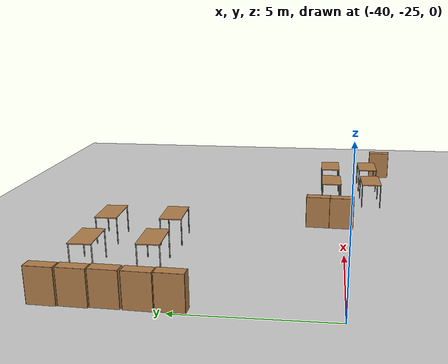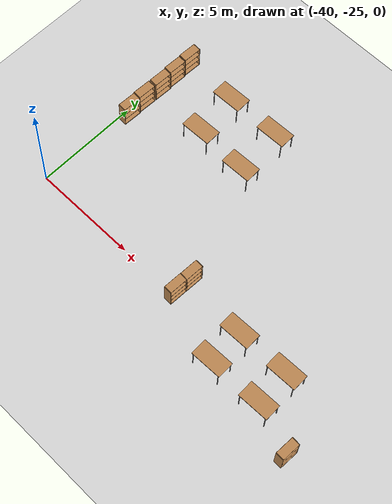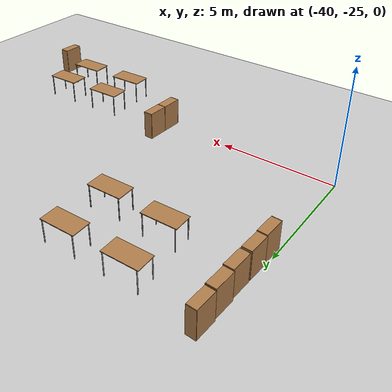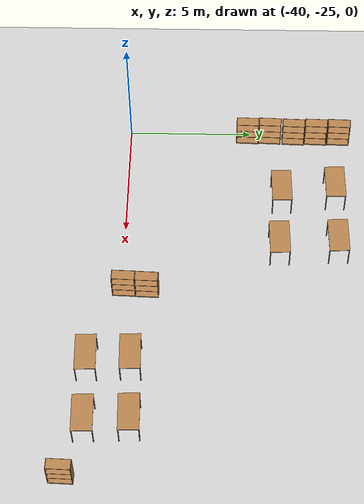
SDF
<sdf version="1.6">
 <world name="default">
  <model name="ground_plane">
   <static>1</static>
   <link name="link">
    <collision name="collision">
     <geometry><plane><normal>0 0 1</normal><size>100 100</size></plane></geometry>
     <surface><friction><ode><mu>100</mu><mu2>50</mu2></ode></friction></surface>
    </collision>
    <visual name="visual">
     <cast_shadows>0</cast_shadows>
     <geometry><plane><normal>0 0 1</normal><size>100 100</size></plane></geometry>
     <material>
      <script><uri>file://media/materials/scripts/gazebo.material</uri><name>Gazebo/Grey</name></script>
     </material>
    </visual>
   </link>
  </model>
  <model name="bookshelf_clone_1">
   <static>1</static>
   <link name="link">
    <inertial><mass>1</mass></inertial>
    <collision name="back">
     <pose>0 0.005 0.6 0 -0 0</pose>
     <geometry><box><size>0.9 0.01 1.2</size></box></geometry>
    </collision>
    <visual name="visual1">
     <pose>0 0.005 0.6 0 -0 0</pose>
     <geometry><box><size>0.9 0.01 1.2</size></box></geometry>
     <material>
      <script><uri>file://media/materials/scripts/gazebo.material</uri><name>Gazebo/Wood</name></script>
     </material>
    </visual>
    <collision name="left_side">
     <pose>0.45 -0.195 0.6 0 -0 0</pose>
     <geometry><box><size>0.02 0.4 1.2</size></box></geometry>
    </collision>
    <visual name="visual2">
     <pose>0.45 -0.195 0.6 0 -0 0</pose>
     <geometry><box><size>0.02 0.4 1.2</size></box></geometry>
     <material>
      <script><uri>file://media/materials/scripts/gazebo.material</uri><name>Gazebo/Wood</name></script>
     </material>
    </visual>
    <collision name="right_side">
     <pose>-0.45 -0.195 0.6 0 -0 0</pose>
     <geometry><box><size>0.02 0.4 1.2</size></box></geometry>
    </collision>
    <visual name="visual3">
     <pose>-0.45 -0.195 0.6 0 -0 0</pose>
     <geometry><box><size>0.02 0.4 1.2</size></box></geometry>
     <material>
      <script><uri>file://media/materials/scripts/gazebo.material</uri><name>Gazebo/Wood</name></script>
     </material>
    </visual>
    <collision name="bottom">
     <pose>0 -0.195 0.03 0 -0 0</pose>
     <geometry><box><size>0.88 0.4 0.06</size></box></geometry>
    </collision>
    <visual name="visual4">
     <pose>0 -0.195 0.03 0 -0 0</pose>
     <geometry><box><size>0.88 0.4 0.06</size></box></geometry>
     <material>
      <script><uri>file://media/materials/scripts/gazebo.material</uri><name>Gazebo/Wood</name></script>
     </material>
    </visual>
    <collision name="top">
     <pose>0 -0.195 1.19 0 -0 0</pose>
     <geometry><box><size>0.88 0.4 0.02</size></box></geometry>
    </collision>
    <visual name="visual5">
     <pose>0 -0.195 1.19 0 -0 0</pose>
     <geometry><box><size>0.88 0.4 0.02</size></box></geometry>
     <material>
      <script><uri>file://media/materials/scripts/gazebo.material</uri><name>Gazebo/Wood</name></script>
     </material>
    </visual>
    <collision name="low_shelf">
     <pose>0 -0.195 0.43 0 -0 0</pose>
     <geometry><box><size>0.88 0.4 0.02</size></box></geometry>
    </collision>
    <visual name="visual6">
     <pose>0 -0.195 0.43 0 -0 0</pose>
     <geometry><box><size>0.88 0.4 0.02</size></box></geometry>
     <material>
      <script><uri>file://media/materials/scripts/gazebo.material</uri><name>Gazebo/Wood</name></script>
     </material>
    </visual>
    <collision name="high_shelf">
     <pose>0 -0.195 0.8 0 -0 0</pose>
     <geometry><box><size>0.88 0.4 0.02</size></box></geometry>
    </collision>
    <visual name="visual7">
     <pose>0 -0.195 0.8 0 -0 0</pose>
     <geometry><box><size>0.88 0.4 0.02</size></box></geometry>
     <material>
      <script><uri>file://media/materials/scripts/gazebo.material</uri><name>Gazebo/Wood</name></script>
     </material>
    </visual>
   </link>
   <pose>-39.8789 -16.3153 0 0 -0 1.53332</pose>
  </model>
  <model name="bookshelf_clone_2">
   <static>1</static>
   <link name="link">
    <inertial><mass>1</mass></inertial>
    <collision name="back">
     <pose>0 0.005 0.6 0 -0 0</pose>
     <geometry><box><size>0.9 0.01 1.2</size></box></geometry>
    </collision>
    <visual name="visual1">
     <pose>0 0.005 0.6 0 -0 0</pose>
     <geometry><box><size>0.9 0.01 1.2</size></box></geometry>
     <material>
      <script><uri>file://media/materials/scripts/gazebo.material</uri><name>Gazebo/Wood</name></script>
     </material>
    </visual>
    <collision name="left_side">
     <pose>0.45 -0.195 0.6 0 -0 0</pose>
     <geometry><box><size>0.02 0.4 1.2</size></box></geometry>
    </collision>
    <visual name="visual2">
     <pose>0.45 -0.195 0.6 0 -0 0</pose>
     <geometry><box><size>0.02 0.4 1.2</size></box></geometry>
     <material>
      <script><uri>file://media/materials/scripts/gazebo.material</uri><name>Gazebo/Wood</name></script>
     </material>
    </visual>
    <collision name="right_side">
     <pose>-0.45 -0.195 0.6 0 -0 0</pose>
     <geometry><box><size>0.02 0.4 1.2</size></box></geometry>
    </collision>
    <visual name="visual3">
     <pose>-0.45 -0.195 0.6 0 -0 0</pose>
     <geometry><box><size>0.02 0.4 1.2</size></box></geometry>
     <material>
      <script><uri>file://media/materials/scripts/gazebo.material</uri><name>Gazebo/Wood</name></script>
     </material>
    </visual>
    <collision name="bottom">
     <pose>0 -0.195 0.03 0 -0 0</pose>
     <geometry><box><size>0.88 0.4 0.06</size></box></geometry>
    </collision>
    <visual name="visual4">
     <pose>0 -0.195 0.03 0 -0 0</pose>
     <geometry><box><size>0.88 0.4 0.06</size></box></geometry>
     <material>
      <script><uri>file://media/materials/scripts/gazebo.material</uri><name>Gazebo/Wood</name></script>
     </material>
    </visual>
    <collision name="top">
     <pose>0 -0.195 1.19 0 -0 0</pose>
     <geometry><box><size>0.88 0.4 0.02</size></box></geometry>
    </collision>
    <visual name="visual5">
     <pose>0 -0.195 1.19 0 -0 0</pose>
     <geometry><box><size>0.88 0.4 0.02</size></box></geometry>
     <material>
      <script><uri>file://media/materials/scripts/gazebo.material</uri><name>Gazebo/Wood</name></script>
     </material>
    </visual>
    <collision name="low_shelf">
     <pose>0 -0.195 0.43 0 -0 0</pose>
     <geometry><box><size>0.88 0.4 0.02</size></box></geometry>
    </collision>
    <visual name="visual6">
     <pose>0 -0.195 0.43 0 -0 0</pose>
     <geometry><box><size>0.88 0.4 0.02</size></box></geometry>
     <material>
      <script><uri>file://media/materials/scripts/gazebo.material</uri><name>Gazebo/Wood</name></script>
     </material>
    </visual>
    <collision name="high_shelf">
     <pose>0 -0.195 0.8 0 -0 0</pose>
     <geometry><box><size>0.88 0.4 0.02</size></box></geometry>
    </collision>
    <visual name="visual7">
     <pose>0 -0.195 0.8 0 -0 0</pose>
     <geometry><box><size>0.88 0.4 0.02</size></box></geometry>
     <material>
      <script><uri>file://media/materials/scripts/gazebo.material</uri><name>Gazebo/Wood</name></script>
     </material>
    </visual>
   </link>
   <pose>-39.8818 -17.2637 0 0 -0 1.53332</pose>
  </model>
  <model name="bookshelf_clone_3">
   <static>1</static>
   <link name="link">
    <inertial><mass>1</mass></inertial>
    <collision name="back">
     <pose>0 0.005 0.6 0 -0 0</pose>
     <geometry><box><size>0.9 0.01 1.2</size></box></geometry>
    </collision>
    <visual name="visual1">
     <pose>0 0.005 0.6 0 -0 0</pose>
     <geometry><box><size>0.9 0.01 1.2</size></box></geometry>
     <material>
      <script><uri>file://media/materials/scripts/gazebo.material</uri><name>Gazebo/Wood</name></script>
     </material>
    </visual>
    <collision name="left_side">
     <pose>0.45 -0.195 0.6 0 -0 0</pose>
     <geometry><box><size>0.02 0.4 1.2</size></box></geometry>
    </collision>
    <visual name="visual2">
     <pose>0.45 -0.195 0.6 0 -0 0</pose>
     <geometry><box><size>0.02 0.4 1.2</size></box></geometry>
     <material>
      <script><uri>file://media/materials/scripts/gazebo.material</uri><name>Gazebo/Wood</name></script>
     </material>
    </visual>
    <collision name="right_side">
     <pose>-0.45 -0.195 0.6 0 -0 0</pose>
     <geometry><box><size>0.02 0.4 1.2</size></box></geometry>
    </collision>
    <visual name="visual3">
     <pose>-0.45 -0.195 0.6 0 -0 0</pose>
     <geometry><box><size>0.02 0.4 1.2</size></box></geometry>
     <material>
      <script><uri>file://media/materials/scripts/gazebo.material</uri><name>Gazebo/Wood</name></script>
     </material>
    </visual>
    <collision name="bottom">
     <pose>0 -0.195 0.03 0 -0 0</pose>
     <geometry><box><size>0.88 0.4 0.06</size></box></geometry>
    </collision>
    <visual name="visual4">
     <pose>0 -0.195 0.03 0 -0 0</pose>
     <geometry><box><size>0.88 0.4 0.06</size></box></geometry>
     <material>
      <script><uri>file://media/materials/scripts/gazebo.material</uri><name>Gazebo/Wood</name></script>
     </material>
    </visual>
    <collision name="top">
     <pose>0 -0.195 1.19 0 -0 0</pose>
     <geometry><box><size>0.88 0.4 0.02</size></box></geometry>
    </collision>
    <visual name="visual5">
     <pose>0 -0.195 1.19 0 -0 0</pose>
     <geometry><box><size>0.88 0.4 0.02</size></box></geometry>
     <material>
      <script><uri>file://media/materials/scripts/gazebo.material</uri><name>Gazebo/Wood</name></script>
     </material>
    </visual>
    <collision name="low_shelf">
     <pose>0 -0.195 0.43 0 -0 0</pose>
     <geometry><box><size>0.88 0.4 0.02</size></box></geometry>
    </collision>
    <visual name="visual6">
     <pose>0 -0.195 0.43 0 -0 0</pose>
     <geometry><box><size>0.88 0.4 0.02</size></box></geometry>
     <material>
      <script><uri>file://media/materials/scripts/gazebo.material</uri><name>Gazebo/Wood</name></script>
     </material>
    </visual>
    <collision name="high_shelf">
     <pose>0 -0.195 0.8 0 -0 0</pose>
     <geometry><box><size>0.88 0.4 0.02</size></box></geometry>
    </collision>
    <visual name="visual7">
     <pose>0 -0.195 0.8 0 -0 0</pose>
     <geometry><box><size>0.88 0.4 0.02</size></box></geometry>
     <material>
      <script><uri>file://media/materials/scripts/gazebo.material</uri><name>Gazebo/Wood</name></script>
     </material>
    </visual>
   </link>
   <pose>-39.8706 -18.2001 0 0 -0 1.53332</pose>
  </model>
  <model name="bookshelf_clone_4">
   <static>1</static>
   <link name="link">
    <inertial><mass>1</mass></inertial>
    <collision name="back">
     <pose>0 0.005 0.6 0 -0 0</pose>
     <geometry><box><size>0.9 0.01 1.2</size></box></geometry>
    </collision>
    <visual name="visual1">
     <pose>0 0.005 0.6 0 -0 0</pose>
     <geometry><box><size>0.9 0.01 1.2</size></box></geometry>
     <material>
      <script><uri>file://media/materials/scripts/gazebo.material</uri><name>Gazebo/Wood</name></script>
     </material>
    </visual>
    <collision name="left_side">
     <pose>0.45 -0.195 0.6 0 -0 0</pose>
     <geometry><box><size>0.02 0.4 1.2</size></box></geometry>
    </collision>
    <visual name="visual2">
     <pose>0.45 -0.195 0.6 0 -0 0</pose>
     <geometry><box><size>0.02 0.4 1.2</size></box></geometry>
     <material>
      <script><uri>file://media/materials/scripts/gazebo.material</uri><name>Gazebo/Wood</name></script>
     </material>
    </visual>
    <collision name="right_side">
     <pose>-0.45 -0.195 0.6 0 -0 0</pose>
     <geometry><box><size>0.02 0.4 1.2</size></box></geometry>
    </collision>
    <visual name="visual3">
     <pose>-0.45 -0.195 0.6 0 -0 0</pose>
     <geometry><box><size>0.02 0.4 1.2</size></box></geometry>
     <material>
      <script><uri>file://media/materials/scripts/gazebo.material</uri><name>Gazebo/Wood</name></script>
     </material>
    </visual>
    <collision name="bottom">
     <pose>0 -0.195 0.03 0 -0 0</pose>
     <geometry><box><size>0.88 0.4 0.06</size></box></geometry>
    </collision>
    <visual name="visual4">
     <pose>0 -0.195 0.03 0 -0 0</pose>
     <geometry><box><size>0.88 0.4 0.06</size></box></geometry>
     <material>
      <script><uri>file://media/materials/scripts/gazebo.material</uri><name>Gazebo/Wood</name></script>
     </material>
    </visual>
    <collision name="top">
     <pose>0 -0.195 1.19 0 -0 0</pose>
     <geometry><box><size>0.88 0.4 0.02</size></box></geometry>
    </collision>
    <visual name="visual5">
     <pose>0 -0.195 1.19 0 -0 0</pose>
     <geometry><box><size>0.88 0.4 0.02</size></box></geometry>
     <material>
      <script><uri>file://media/materials/scripts/gazebo.material</uri><name>Gazebo/Wood</name></script>
     </material>
    </visual>
    <collision name="low_shelf">
     <pose>0 -0.195 0.43 0 -0 0</pose>
     <geometry><box><size>0.88 0.4 0.02</size></box></geometry>
    </collision>
    <visual name="visual6">
     <pose>0 -0.195 0.43 0 -0 0</pose>
     <geometry><box><size>0.88 0.4 0.02</size></box></geometry>
     <material>
      <script><uri>file://media/materials/scripts/gazebo.material</uri><name>Gazebo/Wood</name></script>
     </material>
    </visual>
    <collision name="high_shelf">
     <pose>0 -0.195 0.8 0 -0 0</pose>
     <geometry><box><size>0.88 0.4 0.02</size></box></geometry>
    </collision>
    <visual name="visual7">
     <pose>0 -0.195 0.8 0 -0 0</pose>
     <geometry><box><size>0.88 0.4 0.02</size></box></geometry>
     <material>
      <script><uri>file://media/materials/scripts/gazebo.material</uri><name>Gazebo/Wood</name></script>
     </material>
    </visual>
   </link>
   <pose>-39.9081 -19.1777 0 0 -0 1.53332</pose>
  </model>
  <model name="bookshelf_clone_5">
   <static>1</static>
   <link name="link">
    <inertial><mass>1</mass></inertial>
    <collision name="back">
     <pose>0 0.005 0.6 0 -0 0</pose>
     <geometry><box><size>0.9 0.01 1.2</size></box></geometry>
    </collision>
    <visual name="visual1">
     <pose>0 0.005 0.6 0 -0 0</pose>
     <geometry><box><size>0.9 0.01 1.2</size></box></geometry>
     <material>
      <script><uri>file://media/materials/scripts/gazebo.material</uri><name>Gazebo/Wood</name></script>
     </material>
    </visual>
    <collision name="left_side">
     <pose>0.45 -0.195 0.6 0 -0 0</pose>
     <geometry><box><size>0.02 0.4 1.2</size></box></geometry>
    </collision>
    <visual name="visual2">
     <pose>0.45 -0.195 0.6 0 -0 0</pose>
     <geometry><box><size>0.02 0.4 1.2</size></box></geometry>
     <material>
      <script><uri>file://media/materials/scripts/gazebo.material</uri><name>Gazebo/Wood</name></script>
     </material>
    </visual>
    <collision name="right_side">
     <pose>-0.45 -0.195 0.6 0 -0 0</pose>
     <geometry><box><size>0.02 0.4 1.2</size></box></geometry>
    </collision>
    <visual name="visual3">
     <pose>-0.45 -0.195 0.6 0 -0 0</pose>
     <geometry><box><size>0.02 0.4 1.2</size></box></geometry>
     <material>
      <script><uri>file://media/materials/scripts/gazebo.material</uri><name>Gazebo/Wood</name></script>
     </material>
    </visual>
    <collision name="bottom">
     <pose>0 -0.195 0.03 0 -0 0</pose>
     <geometry><box><size>0.88 0.4 0.06</size></box></geometry>
    </collision>
    <visual name="visual4">
     <pose>0 -0.195 0.03 0 -0 0</pose>
     <geometry><box><size>0.88 0.4 0.06</size></box></geometry>
     <material>
      <script><uri>file://media/materials/scripts/gazebo.material</uri><name>Gazebo/Wood</name></script>
     </material>
    </visual>
    <collision name="top">
     <pose>0 -0.195 1.19 0 -0 0</pose>
     <geometry><box><size>0.88 0.4 0.02</size></box></geometry>
    </collision>
    <visual name="visual5">
     <pose>0 -0.195 1.19 0 -0 0</pose>
     <geometry><box><size>0.88 0.4 0.02</size></box></geometry>
     <material>
      <script><uri>file://media/materials/scripts/gazebo.material</uri><name>Gazebo/Wood</name></script>
     </material>
    </visual>
    <collision name="low_shelf">
     <pose>0 -0.195 0.43 0 -0 0</pose>
     <geometry><box><size>0.88 0.4 0.02</size></box></geometry>
    </collision>
    <visual name="visual6">
     <pose>0 -0.195 0.43 0 -0 0</pose>
     <geometry><box><size>0.88 0.4 0.02</size></box></geometry>
     <material>
      <script><uri>file://media/materials/scripts/gazebo.material</uri><name>Gazebo/Wood</name></script>
     </material>
    </visual>
    <collision name="high_shelf">
     <pose>0 -0.195 0.8 0 -0 0</pose>
     <geometry><box><size>0.88 0.4 0.02</size></box></geometry>
    </collision>
    <visual name="visual7">
     <pose>0 -0.195 0.8 0 -0 0</pose>
     <geometry><box><size>0.88 0.4 0.02</size></box></geometry>
     <material>
      <script><uri>file://media/materials/scripts/gazebo.material</uri><name>Gazebo/Wood</name></script>
     </material>
    </visual>
   </link>
   <pose>-39.9112 -20.1084 0 0 -0 1.53332</pose>
  </model>
  <model name="table_clone_5_clone_2_clone">
   <static>1</static>
   <link name="link">
    <collision name="surface">
     <pose>0 0 1 0 -0 0</pose>
     <geometry><box><size>1.5 0.8 0.03</size></box></geometry>
     <surface><friction><ode><mu>0.6</mu><mu2>0.6</mu2></ode></friction></surface>
    </collision>
    <visual name="visual1">
     <pose>0 0 1 0 -0 0</pose>
     <geometry><box><size>1.5 0.8 0.03</size></box></geometry>
     <material>
      <script><uri>file://media/materials/scripts/gazebo.material</uri><name>Gazebo/Wood</name></script>
     </material>
    </visual>
    <collision name="front_left_leg">
     <pose>0.68 0.38 0.5 0 -0 0</pose>
     <geometry><cylinder><radius>0.02</radius><length>1</length></cylinder></geometry>
    </collision>
    <visual name="front_left_leg">
     <pose>0.68 0.38 0.5 0 -0 0</pose>
     <geometry><cylinder><radius>0.02</radius><length>1</length></cylinder></geometry>
     <material>
      <script><uri>file://media/materials/scripts/gazebo.material</uri><name>Gazebo/Grey</name></script>
     </material>
    </visual>
    <collision name="front_right_leg">
     <pose>0.68 -0.38 0.5 0 -0 0</pose>
     <geometry><cylinder><radius>0.02</radius><length>1</length></cylinder></geometry>
    </collision>
    <visual name="front_right_leg">
     <pose>0.68 -0.38 0.5 0 -0 0</pose>
     <geometry><cylinder><radius>0.02</radius><length>1</length></cylinder></geometry>
     <material>
      <script><uri>file://media/materials/scripts/gazebo.material</uri><name>Gazebo/Grey</name></script>
     </material>
    </visual>
    <collision name="back_right_leg">
     <pose>-0.68 -0.38 0.5 0 -0 0</pose>
     <geometry><cylinder><radius>0.02</radius><length>1</length></cylinder></geometry>
    </collision>
    <visual name="back_right_leg">
     <pose>-0.68 -0.38 0.5 0 -0 0</pose>
     <geometry><cylinder><radius>0.02</radius><length>1</length></cylinder></geometry>
     <material>
      <script><uri>file://media/materials/scripts/gazebo.material</uri><name>Gazebo/Grey</name></script>
     </material>
    </visual>
    <collision name="back_left_leg">
     <pose>-0.68 0.38 0.5 0 -0 0</pose>
     <geometry><cylinder><radius>0.02</radius><length>1</length></cylinder></geometry>
    </collision>
    <visual name="back_left_leg">
     <pose>-0.68 0.38 0.5 0 -0 0</pose>
     <geometry><cylinder><radius>0.02</radius><length>1</length></cylinder></geometry>
     <material>
      <script><uri>file://media/materials/scripts/gazebo.material</uri><name>Gazebo/Grey</name></script>
     </material>
    </visual>
   </link>
   <pose>-36.7837 -16.5831 0 0 0 -3.114</pose>
  </model>
  <model name="table_clone_5_clone_2_clone_0">
   <static>1</static>
   <link name="link">
    <collision name="surface">
     <pose>0 0 1 0 -0 0</pose>
     <geometry><box><size>1.5 0.8 0.03</size></box></geometry>
     <surface><friction><ode><mu>0.6</mu><mu2>0.6</mu2></ode></friction></surface>
    </collision>
    <visual name="visual1">
     <pose>0 0 1 0 -0 0</pose>
     <geometry><box><size>1.5 0.8 0.03</size></box></geometry>
     <material>
      <script><uri>file://media/materials/scripts/gazebo.material</uri><name>Gazebo/Wood</name></script>
     </material>
    </visual>
    <collision name="front_left_leg">
     <pose>0.68 0.38 0.5 0 -0 0</pose>
     <geometry><cylinder><radius>0.02</radius><length>1</length></cylinder></geometry>
    </collision>
    <visual name="front_left_leg">
     <pose>0.68 0.38 0.5 0 -0 0</pose>
     <geometry><cylinder><radius>0.02</radius><length>1</length></cylinder></geometry>
     <material>
      <script><uri>file://media/materials/scripts/gazebo.material</uri><name>Gazebo/Grey</name></script>
     </material>
    </visual>
    <collision name="front_right_leg">
     <pose>0.68 -0.38 0.5 0 -0 0</pose>
     <geometry><cylinder><radius>0.02</radius><length>1</length></cylinder></geometry>
    </collision>
    <visual name="front_right_leg">
     <pose>0.68 -0.38 0.5 0 -0 0</pose>
     <geometry><cylinder><radius>0.02</radius><length>1</length></cylinder></geometry>
     <material>
      <script><uri>file://media/materials/scripts/gazebo.material</uri><name>Gazebo/Grey</name></script>
     </material>
    </visual>
    <collision name="back_right_leg">
     <pose>-0.68 -0.38 0.5 0 -0 0</pose>
     <geometry><cylinder><radius>0.02</radius><length>1</length></cylinder></geometry>
    </collision>
    <visual name="back_right_leg">
     <pose>-0.68 -0.38 0.5 0 -0 0</pose>
     <geometry><cylinder><radius>0.02</radius><length>1</length></cylinder></geometry>
     <material>
      <script><uri>file://media/materials/scripts/gazebo.material</uri><name>Gazebo/Grey</name></script>
     </material>
    </visual>
    <collision name="back_left_leg">
     <pose>-0.68 0.38 0.5 0 -0 0</pose>
     <geometry><cylinder><radius>0.02</radius><length>1</length></cylinder></geometry>
    </collision>
    <visual name="back_left_leg">
     <pose>-0.68 0.38 0.5 0 -0 0</pose>
     <geometry><cylinder><radius>0.02</radius><length>1</length></cylinder></geometry>
     <material>
      <script><uri>file://media/materials/scripts/gazebo.material</uri><name>Gazebo/Grey</name></script>
     </material>
    </visual>
   </link>
   <pose>-36.574 -18.7469 0 0 0 -3.114</pose>
  </model>
  <model name="table_clone_5_clone_2_clone_2">
   <static>1</static>
   <link name="link">
    <collision name="surface">
     <pose>0 0 1 0 -0 0</pose>
     <geometry><box><size>1.5 0.8 0.03</size></box></geometry>
     <surface><friction><ode><mu>0.6</mu><mu2>0.6</mu2></ode></friction></surface>
    </collision>
    <visual name="visual1">
     <pose>0 0 1 0 -0 0</pose>
     <geometry><box><size>1.5 0.8 0.03</size></box></geometry>
     <material>
      <script><uri>file://media/materials/scripts/gazebo.material</uri><name>Gazebo/Wood</name></script>
     </material>
    </visual>
    <collision name="front_left_leg">
     <pose>0.68 0.38 0.5 0 -0 0</pose>
     <geometry><cylinder><radius>0.02</radius><length>1</length></cylinder></geometry>
    </collision>
    <visual name="front_left_leg">
     <pose>0.68 0.38 0.5 0 -0 0</pose>
     <geometry><cylinder><radius>0.02</radius><length>1</length></cylinder></geometry>
     <material>
      <script><uri>file://media/materials/scripts/gazebo.material</uri><name>Gazebo/Grey</name></script>
     </material>
    </visual>
    <collision name="front_right_leg">
     <pose>0.68 -0.38 0.5 0 -0 0</pose>
     <geometry><cylinder><radius>0.02</radius><length>1</length></cylinder></geometry>
    </collision>
    <visual name="front_right_leg">
     <pose>0.68 -0.38 0.5 0 -0 0</pose>
     <geometry><cylinder><radius>0.02</radius><length>1</length></cylinder></geometry>
     <material>
      <script><uri>file://media/materials/scripts/gazebo.material</uri><name>Gazebo/Grey</name></script>
     </material>
    </visual>
    <collision name="back_right_leg">
     <pose>-0.68 -0.38 0.5 0 -0 0</pose>
     <geometry><cylinder><radius>0.02</radius><length>1</length></cylinder></geometry>
    </collision>
    <visual name="back_right_leg">
     <pose>-0.68 -0.38 0.5 0 -0 0</pose>
     <geometry><cylinder><radius>0.02</radius><length>1</length></cylinder></geometry>
     <material>
      <script><uri>file://media/materials/scripts/gazebo.material</uri><name>Gazebo/Grey</name></script>
     </material>
    </visual>
    <collision name="back_left_leg">
     <pose>-0.68 0.38 0.5 0 -0 0</pose>
     <geometry><cylinder><radius>0.02</radius><length>1</length></cylinder></geometry>
    </collision>
    <visual name="back_left_leg">
     <pose>-0.68 0.38 0.5 0 -0 0</pose>
     <geometry><cylinder><radius>0.02</radius><length>1</length></cylinder></geometry>
     <material>
      <script><uri>file://media/materials/scripts/gazebo.material</uri><name>Gazebo/Grey</name></script>
     </material>
    </visual>
   </link>
   <pose>-34.1418 -16.5383 0 0 0 -3.114</pose>
  </model>
  <model name="table_clone_5_clone_2_clone_3">
   <static>1</static>
   <link name="link">
    <collision name="surface">
     <pose>0 0 1 0 -0 0</pose>
     <geometry><box><size>1.5 0.8 0.03</size></box></geometry>
     <surface><friction><ode><mu>0.6</mu><mu2>0.6</mu2></ode></friction></surface>
    </collision>
    <visual name="visual1">
     <pose>0 0 1 0 -0 0</pose>
     <geometry><box><size>1.5 0.8 0.03</size></box></geometry>
     <material>
      <script><uri>file://media/materials/scripts/gazebo.material</uri><name>Gazebo/Wood</name></script>
     </material>
    </visual>
    <collision name="front_left_leg">
     <pose>0.68 0.38 0.5 0 -0 0</pose>
     <geometry><cylinder><radius>0.02</radius><length>1</length></cylinder></geometry>
    </collision>
    <visual name="front_left_leg">
     <pose>0.68 0.38 0.5 0 -0 0</pose>
     <geometry><cylinder><radius>0.02</radius><length>1</length></cylinder></geometry>
     <material>
      <script><uri>file://media/materials/scripts/gazebo.material</uri><name>Gazebo/Grey</name></script>
     </material>
    </visual>
    <collision name="front_right_leg">
     <pose>0.68 -0.38 0.5 0 -0 0</pose>
     <geometry><cylinder><radius>0.02</radius><length>1</length></cylinder></geometry>
    </collision>
    <visual name="front_right_leg">
     <pose>0.68 -0.38 0.5 0 -0 0</pose>
     <geometry><cylinder><radius>0.02</radius><length>1</length></cylinder></geometry>
     <material>
      <script><uri>file://media/materials/scripts/gazebo.material</uri><name>Gazebo/Grey</name></script>
     </material>
    </visual>
    <collision name="back_right_leg">
     <pose>-0.68 -0.38 0.5 0 -0 0</pose>
     <geometry><cylinder><radius>0.02</radius><length>1</length></cylinder></geometry>
    </collision>
    <visual name="back_right_leg">
     <pose>-0.68 -0.38 0.5 0 -0 0</pose>
     <geometry><cylinder><radius>0.02</radius><length>1</length></cylinder></geometry>
     <material>
      <script><uri>file://media/materials/scripts/gazebo.material</uri><name>Gazebo/Grey</name></script>
     </material>
    </visual>
    <collision name="back_left_leg">
     <pose>-0.68 0.38 0.5 0 -0 0</pose>
     <geometry><cylinder><radius>0.02</radius><length>1</length></cylinder></geometry>
    </collision>
    <visual name="back_left_leg">
     <pose>-0.68 0.38 0.5 0 -0 0</pose>
     <geometry><cylinder><radius>0.02</radius><length>1</length></cylinder></geometry>
     <material>
      <script><uri>file://media/materials/scripts/gazebo.material</uri><name>Gazebo/Grey</name></script>
     </material>
    </visual>
   </link>
   <pose>-34.0327 -18.8569 0 0 0 -3.114</pose>
  </model>
  <model name="table_clone_5_clone_2_clone_4">
   <static>1</static>
   <link name="link">
    <collision name="surface">
     <pose>0 0 1 0 -0 0</pose>
     <geometry><box><size>1.5 0.8 0.03</size></box></geometry>
     <surface><friction><ode><mu>0.6</mu><mu2>0.6</mu2></ode></friction></surface>
    </collision>
    <visual name="visual1">
     <pose>0 0 1 0 -0 0</pose>
     <geometry><box><size>1.5 0.8 0.03</size></box></geometry>
     <material>
      <script><uri>file://media/materials/scripts/gazebo.material</uri><name>Gazebo/Wood</name></script>
     </material>
    </visual>
    <collision name="front_left_leg">
     <pose>0.68 0.38 0.5 0 -0 0</pose>
     <geometry><cylinder><radius>0.02</radius><length>1</length></cylinder></geometry>
    </collision>
    <visual name="front_left_leg">
     <pose>0.68 0.38 0.5 0 -0 0</pose>
     <geometry><cylinder><radius>0.02</radius><length>1</length></cylinder></geometry>
     <material>
      <script><uri>file://media/materials/scripts/gazebo.material</uri><name>Gazebo/Grey</name></script>
     </material>
    </visual>
    <collision name="front_right_leg">
     <pose>0.68 -0.38 0.5 0 -0 0</pose>
     <geometry><cylinder><radius>0.02</radius><length>1</length></cylinder></geometry>
    </collision>
    <visual name="front_right_leg">
     <pose>0.68 -0.38 0.5 0 -0 0</pose>
     <geometry><cylinder><radius>0.02</radius><length>1</length></cylinder></geometry>
     <material>
      <script><uri>file://media/materials/scripts/gazebo.material</uri><name>Gazebo/Grey</name></script>
     </material>
    </visual>
    <collision name="back_right_leg">
     <pose>-0.68 -0.38 0.5 0 -0 0</pose>
     <geometry><cylinder><radius>0.02</radius><length>1</length></cylinder></geometry>
    </collision>
    <visual name="back_right_leg">
     <pose>-0.68 -0.38 0.5 0 -0 0</pose>
     <geometry><cylinder><radius>0.02</radius><length>1</length></cylinder></geometry>
     <material>
      <script><uri>file://media/materials/scripts/gazebo.material</uri><name>Gazebo/Grey</name></script>
     </material>
    </visual>
    <collision name="back_left_leg">
     <pose>-0.68 0.38 0.5 0 -0 0</pose>
     <geometry><cylinder><radius>0.02</radius><length>1</length></cylinder></geometry>
    </collision>
    <visual name="back_left_leg">
     <pose>-0.68 0.38 0.5 0 -0 0</pose>
     <geometry><cylinder><radius>0.02</radius><length>1</length></cylinder></geometry>
     <material>
      <script><uri>file://media/materials/scripts/gazebo.material</uri><name>Gazebo/Grey</name></script>
     </material>
    </visual>
   </link>
   <pose>-28.734 -24.488 0 0 0 -3.114</pose>
  </model>
  <model name="bookshelf_clone_5_clone">
   <static>1</static>
   <link name="link">
    <inertial><mass>1</mass></inertial>
    <collision name="back">
     <pose>0 0.005 0.6 0 -0 0</pose>
     <geometry><box><size>0.9 0.01 1.2</size></box></geometry>
    </collision>
    <visual name="visual1">
     <pose>0 0.005 0.6 0 -0 0</pose>
     <geometry><box><size>0.9 0.01 1.2</size></box></geometry>
     <material>
      <script><uri>file://media/materials/scripts/gazebo.material</uri><name>Gazebo/Wood</name></script>
     </material>
    </visual>
    <collision name="left_side">
     <pose>0.45 -0.195 0.6 0 -0 0</pose>
     <geometry><box><size>0.02 0.4 1.2</size></box></geometry>
    </collision>
    <visual name="visual2">
     <pose>0.45 -0.195 0.6 0 -0 0</pose>
     <geometry><box><size>0.02 0.4 1.2</size></box></geometry>
     <material>
      <script><uri>file://media/materials/scripts/gazebo.material</uri><name>Gazebo/Wood</name></script>
     </material>
    </visual>
    <collision name="right_side">
     <pose>-0.45 -0.195 0.6 0 -0 0</pose>
     <geometry><box><size>0.02 0.4 1.2</size></box></geometry>
    </collision>
    <visual name="visual3">
     <pose>-0.45 -0.195 0.6 0 -0 0</pose>
     <geometry><box><size>0.02 0.4 1.2</size></box></geometry>
     <material>
      <script><uri>file://media/materials/scripts/gazebo.material</uri><name>Gazebo/Wood</name></script>
     </material>
    </visual>
    <collision name="bottom">
     <pose>0 -0.195 0.03 0 -0 0</pose>
     <geometry><box><size>0.88 0.4 0.06</size></box></geometry>
    </collision>
    <visual name="visual4">
     <pose>0 -0.195 0.03 0 -0 0</pose>
     <geometry><box><size>0.88 0.4 0.06</size></box></geometry>
     <material>
      <script><uri>file://media/materials/scripts/gazebo.material</uri><name>Gazebo/Wood</name></script>
     </material>
    </visual>
    <collision name="top">
     <pose>0 -0.195 1.19 0 -0 0</pose>
     <geometry><box><size>0.88 0.4 0.02</size></box></geometry>
    </collision>
    <visual name="visual5">
     <pose>0 -0.195 1.19 0 -0 0</pose>
     <geometry><box><size>0.88 0.4 0.02</size></box></geometry>
     <material>
      <script><uri>file://media/materials/scripts/gazebo.material</uri><name>Gazebo/Wood</name></script>
     </material>
    </visual>
    <collision name="low_shelf">
     <pose>0 -0.195 0.43 0 -0 0</pose>
     <geometry><box><size>0.88 0.4 0.02</size></box></geometry>
    </collision>
    <visual name="visual6">
     <pose>0 -0.195 0.43 0 -0 0</pose>
     <geometry><box><size>0.88 0.4 0.02</size></box></geometry>
     <material>
      <script><uri>file://media/materials/scripts/gazebo.material</uri><name>Gazebo/Wood</name></script>
     </material>
    </visual>
    <collision name="high_shelf">
     <pose>0 -0.195 0.8 0 -0 0</pose>
     <geometry><box><size>0.88 0.4 0.02</size></box></geometry>
    </collision>
    <visual name="visual7">
     <pose>0 -0.195 0.8 0 -0 0</pose>
     <geometry><box><size>0.88 0.4 0.02</size></box></geometry>
     <material>
      <script><uri>file://media/materials/scripts/gazebo.material</uri><name>Gazebo/Wood</name></script>
     </material>
    </visual>
   </link>
   <pose>-32.1883 -24.9021 0 0 -0 1.53332</pose>
  </model>
  <model name="bookshelf_clone_5_clone_0">
   <static>1</static>
   <link name="link">
    <inertial><mass>1</mass></inertial>
    <collision name="back">
     <pose>0 0.005 0.6 0 -0 0</pose>
     <geometry><box><size>0.9 0.01 1.2</size></box></geometry>
    </collision>
    <visual name="visual1">
     <pose>0 0.005 0.6 0 -0 0</pose>
     <geometry><box><size>0.9 0.01 1.2</size></box></geometry>
     <material>
      <script><uri>file://media/materials/scripts/gazebo.material</uri><name>Gazebo/Wood</name></script>
     </material>
    </visual>
    <collision name="left_side">
     <pose>0.45 -0.195 0.6 0 -0 0</pose>
     <geometry><box><size>0.02 0.4 1.2</size></box></geometry>
    </collision>
    <visual name="visual2">
     <pose>0.45 -0.195 0.6 0 -0 0</pose>
     <geometry><box><size>0.02 0.4 1.2</size></box></geometry>
     <material>
      <script><uri>file://media/materials/scripts/gazebo.material</uri><name>Gazebo/Wood</name></script>
     </material>
    </visual>
    <collision name="right_side">
     <pose>-0.45 -0.195 0.6 0 -0 0</pose>
     <geometry><box><size>0.02 0.4 1.2</size></box></geometry>
    </collision>
    <visual name="visual3">
     <pose>-0.45 -0.195 0.6 0 -0 0</pose>
     <geometry><box><size>0.02 0.4 1.2</size></box></geometry>
     <material>
      <script><uri>file://media/materials/scripts/gazebo.material</uri><name>Gazebo/Wood</name></script>
     </material>
    </visual>
    <collision name="bottom">
     <pose>0 -0.195 0.03 0 -0 0</pose>
     <geometry><box><size>0.88 0.4 0.06</size></box></geometry>
    </collision>
    <visual name="visual4">
     <pose>0 -0.195 0.03 0 -0 0</pose>
     <geometry><box><size>0.88 0.4 0.06</size></box></geometry>
     <material>
      <script><uri>file://media/materials/scripts/gazebo.material</uri><name>Gazebo/Wood</name></script>
     </material>
    </visual>
    <collision name="top">
     <pose>0 -0.195 1.19 0 -0 0</pose>
     <geometry><box><size>0.88 0.4 0.02</size></box></geometry>
    </collision>
    <visual name="visual5">
     <pose>0 -0.195 1.19 0 -0 0</pose>
     <geometry><box><size>0.88 0.4 0.02</size></box></geometry>
     <material>
      <script><uri>file://media/materials/scripts/gazebo.material</uri><name>Gazebo/Wood</name></script>
     </material>
    </visual>
    <collision name="low_shelf">
     <pose>0 -0.195 0.43 0 -0 0</pose>
     <geometry><box><size>0.88 0.4 0.02</size></box></geometry>
    </collision>
    <visual name="visual6">
     <pose>0 -0.195 0.43 0 -0 0</pose>
     <geometry><box><size>0.88 0.4 0.02</size></box></geometry>
     <material>
      <script><uri>file://media/materials/scripts/gazebo.material</uri><name>Gazebo/Wood</name></script>
     </material>
    </visual>
    <collision name="high_shelf">
     <pose>0 -0.195 0.8 0 -0 0</pose>
     <geometry><box><size>0.88 0.4 0.02</size></box></geometry>
    </collision>
    <visual name="visual7">
     <pose>0 -0.195 0.8 0 -0 0</pose>
     <geometry><box><size>0.88 0.4 0.02</size></box></geometry>
     <material>
      <script><uri>file://media/materials/scripts/gazebo.material</uri><name>Gazebo/Wood</name></script>
     </material>
    </visual>
   </link>
   <pose>-32.1486 -24.0104 0 0 -0 1.53332</pose>
  </model>
  <model name="table_clone_5_clone_2_clone_0_clone">
   <static>1</static>
   <link name="link">
    <collision name="surface">
     <pose>0 0 1 0 -0 0</pose>
     <geometry><box><size>1.5 0.8 0.03</size></box></geometry>
     <surface><friction><ode><mu>0.6</mu><mu2>0.6</mu2></ode></friction></surface>
    </collision>
    <visual name="visual1">
     <pose>0 0 1 0 -0 0</pose>
     <geometry><box><size>1.5 0.8 0.03</size></box></geometry>
     <material>
      <script><uri>file://media/materials/scripts/gazebo.material</uri><name>Gazebo/Wood</name></script>
     </material>
    </visual>
    <collision name="front_left_leg">
     <pose>0.68 0.38 0.5 0 -0 0</pose>
     <geometry><cylinder><radius>0.02</radius><length>1</length></cylinder></geometry>
    </collision>
    <visual name="front_left_leg">
     <pose>0.68 0.38 0.5 0 -0 0</pose>
     <geometry><cylinder><radius>0.02</radius><length>1</length></cylinder></geometry>
     <material>
      <script><uri>file://media/materials/scripts/gazebo.material</uri><name>Gazebo/Grey</name></script>
     </material>
    </visual>
    <collision name="front_right_leg">
     <pose>0.68 -0.38 0.5 0 -0 0</pose>
     <geometry><cylinder><radius>0.02</radius><length>1</length></cylinder></geometry>
    </collision>
    <visual name="front_right_leg">
     <pose>0.68 -0.38 0.5 0 -0 0</pose>
     <geometry><cylinder><radius>0.02</radius><length>1</length></cylinder></geometry>
     <material>
      <script><uri>file://media/materials/scripts/gazebo.material</uri><name>Gazebo/Grey</name></script>
     </material>
    </visual>
    <collision name="back_right_leg">
     <pose>-0.68 -0.38 0.5 0 -0 0</pose>
     <geometry><cylinder><radius>0.02</radius><length>1</length></cylinder></geometry>
    </collision>
    <visual name="back_right_leg">
     <pose>-0.68 -0.38 0.5 0 -0 0</pose>
     <geometry><cylinder><radius>0.02</radius><length>1</length></cylinder></geometry>
     <material>
      <script><uri>file://media/materials/scripts/gazebo.material</uri><name>Gazebo/Grey</name></script>
     </material>
    </visual>
    <collision name="back_left_leg">
     <pose>-0.68 0.38 0.5 0 -0 0</pose>
     <geometry><cylinder><radius>0.02</radius><length>1</length></cylinder></geometry>
    </collision>
    <visual name="back_left_leg">
     <pose>-0.68 0.38 0.5 0 -0 0</pose>
     <geometry><cylinder><radius>0.02</radius><length>1</length></cylinder></geometry>
     <material>
      <script><uri>file://media/materials/scripts/gazebo.material</uri><name>Gazebo/Grey</name></script>
     </material>
    </visual>
   </link>
   <pose>-26.213 -24.4148 0 0 0 -3.114</pose>
  </model>
  <model name="table_clone_5_clone_2_clone_0_clone_0">
   <static>1</static>
   <link name="link">
    <collision name="surface">
     <pose>0 0 1 0 -0 0</pose>
     <geometry><box><size>1.5 0.8 0.03</size></box></geometry>
     <surface><friction><ode><mu>0.6</mu><mu2>0.6</mu2></ode></friction></surface>
    </collision>
    <visual name="visual1">
     <pose>0 0 1 0 -0 0</pose>
     <geometry><box><size>1.5 0.8 0.03</size></box></geometry>
     <material>
      <script><uri>file://media/materials/scripts/gazebo.material</uri><name>Gazebo/Wood</name></script>
     </material>
    </visual>
    <collision name="front_left_leg">
     <pose>0.68 0.38 0.5 0 -0 0</pose>
     <geometry><cylinder><radius>0.02</radius><length>1</length></cylinder></geometry>
    </collision>
    <visual name="front_left_leg">
     <pose>0.68 0.38 0.5 0 -0 0</pose>
     <geometry><cylinder><radius>0.02</radius><length>1</length></cylinder></geometry>
     <material>
      <script><uri>file://media/materials/scripts/gazebo.material</uri><name>Gazebo/Grey</name></script>
     </material>
    </visual>
    <collision name="front_right_leg">
     <pose>0.68 -0.38 0.5 0 -0 0</pose>
     <geometry><cylinder><radius>0.02</radius><length>1</length></cylinder></geometry>
    </collision>
    <visual name="front_right_leg">
     <pose>0.68 -0.38 0.5 0 -0 0</pose>
     <geometry><cylinder><radius>0.02</radius><length>1</length></cylinder></geometry>
     <material>
      <script><uri>file://media/materials/scripts/gazebo.material</uri><name>Gazebo/Grey</name></script>
     </material>
    </visual>
    <collision name="back_right_leg">
     <pose>-0.68 -0.38 0.5 0 -0 0</pose>
     <geometry><cylinder><radius>0.02</radius><length>1</length></cylinder></geometry>
    </collision>
    <visual name="back_right_leg">
     <pose>-0.68 -0.38 0.5 0 -0 0</pose>
     <geometry><cylinder><radius>0.02</radius><length>1</length></cylinder></geometry>
     <material>
      <script><uri>file://media/materials/scripts/gazebo.material</uri><name>Gazebo/Grey</name></script>
     </material>
    </visual>
    <collision name="back_left_leg">
     <pose>-0.68 0.38 0.5 0 -0 0</pose>
     <geometry><cylinder><radius>0.02</radius><length>1</length></cylinder></geometry>
    </collision>
    <visual name="back_left_leg">
     <pose>-0.68 0.38 0.5 0 -0 0</pose>
     <geometry><cylinder><radius>0.02</radius><length>1</length></cylinder></geometry>
     <material>
      <script><uri>file://media/materials/scripts/gazebo.material</uri><name>Gazebo/Grey</name></script>
     </material>
    </visual>
   </link>
   <pose>-28.6852 -26.15 0 0 0 -3.114</pose>
  </model>
  <model name="table_clone_5_clone_2_clone_0_clone_1">
   <static>1</static>
   <link name="link">
    <collision name="surface">
     <pose>0 0 1 0 -0 0</pose>
     <geometry><box><size>1.5 0.8 0.03</size></box></geometry>
     <surface><friction><ode><mu>0.6</mu><mu2>0.6</mu2></ode></friction></surface>
    </collision>
    <visual name="visual1">
     <pose>0 0 1 0 -0 0</pose>
     <geometry><box><size>1.5 0.8 0.03</size></box></geometry>
     <material>
      <script><uri>file://media/materials/scripts/gazebo.material</uri><name>Gazebo/Wood</name></script>
     </material>
    </visual>
    <collision name="front_left_leg">
     <pose>0.68 0.38 0.5 0 -0 0</pose>
     <geometry><cylinder><radius>0.02</radius><length>1</length></cylinder></geometry>
    </collision>
    <visual name="front_left_leg">
     <pose>0.68 0.38 0.5 0 -0 0</pose>
     <geometry><cylinder><radius>0.02</radius><length>1</length></cylinder></geometry>
     <material>
      <script><uri>file://media/materials/scripts/gazebo.material</uri><name>Gazebo/Grey</name></script>
     </material>
    </visual>
    <collision name="front_right_leg">
     <pose>0.68 -0.38 0.5 0 -0 0</pose>
     <geometry><cylinder><radius>0.02</radius><length>1</length></cylinder></geometry>
    </collision>
    <visual name="front_right_leg">
     <pose>0.68 -0.38 0.5 0 -0 0</pose>
     <geometry><cylinder><radius>0.02</radius><length>1</length></cylinder></geometry>
     <material>
      <script><uri>file://media/materials/scripts/gazebo.material</uri><name>Gazebo/Grey</name></script>
     </material>
    </visual>
    <collision name="back_right_leg">
     <pose>-0.68 -0.38 0.5 0 -0 0</pose>
     <geometry><cylinder><radius>0.02</radius><length>1</length></cylinder></geometry>
    </collision>
    <visual name="back_right_leg">
     <pose>-0.68 -0.38 0.5 0 -0 0</pose>
     <geometry><cylinder><radius>0.02</radius><length>1</length></cylinder></geometry>
     <material>
      <script><uri>file://media/materials/scripts/gazebo.material</uri><name>Gazebo/Grey</name></script>
     </material>
    </visual>
    <collision name="back_left_leg">
     <pose>-0.68 0.38 0.5 0 -0 0</pose>
     <geometry><cylinder><radius>0.02</radius><length>1</length></cylinder></geometry>
    </collision>
    <visual name="back_left_leg">
     <pose>-0.68 0.38 0.5 0 -0 0</pose>
     <geometry><cylinder><radius>0.02</radius><length>1</length></cylinder></geometry>
     <material>
      <script><uri>file://media/materials/scripts/gazebo.material</uri><name>Gazebo/Grey</name></script>
     </material>
    </visual>
   </link>
   <pose>-26.1454 -26.0956 0 0 0 -3.114</pose>
  </model>
  <model name="bookshelf_clone_5_clone_clone_0">
   <static>1</static>
   <link name="link">
    <inertial><mass>1</mass></inertial>
    <collision name="back">
     <pose>0 0.005 0.6 0 -0 0</pose>
     <geometry><box><size>0.9 0.01 1.2</size></box></geometry>
    </collision>
    <visual name="visual1">
     <pose>0 0.005 0.6 0 -0 0</pose>
     <geometry><box><size>0.9 0.01 1.2</size></box></geometry>
     <material>
      <script><uri>file://media/materials/scripts/gazebo.material</uri><name>Gazebo/Wood</name></script>
     </material>
    </visual>
    <collision name="left_side">
     <pose>0.45 -0.195 0.6 0 -0 0</pose>
     <geometry><box><size>0.02 0.4 1.2</size></box></geometry>
    </collision>
    <visual name="visual2">
     <pose>0.45 -0.195 0.6 0 -0 0</pose>
     <geometry><box><size>0.02 0.4 1.2</size></box></geometry>
     <material>
      <script><uri>file://media/materials/scripts/gazebo.material</uri><name>Gazebo/Wood</name></script>
     </material>
    </visual>
    <collision name="right_side">
     <pose>-0.45 -0.195 0.6 0 -0 0</pose>
     <geometry><box><size>0.02 0.4 1.2</size></box></geometry>
    </collision>
    <visual name="visual3">
     <pose>-0.45 -0.195 0.6 0 -0 0</pose>
     <geometry><box><size>0.02 0.4 1.2</size></box></geometry>
     <material>
      <script><uri>file://media/materials/scripts/gazebo.material</uri><name>Gazebo/Wood</name></script>
     </material>
    </visual>
    <collision name="bottom">
     <pose>0 -0.195 0.03 0 -0 0</pose>
     <geometry><box><size>0.88 0.4 0.06</size></box></geometry>
    </collision>
    <visual name="visual4">
     <pose>0 -0.195 0.03 0 -0 0</pose>
     <geometry><box><size>0.88 0.4 0.06</size></box></geometry>
     <material>
      <script><uri>file://media/materials/scripts/gazebo.material</uri><name>Gazebo/Wood</name></script>
     </material>
    </visual>
    <collision name="top">
     <pose>0 -0.195 1.19 0 -0 0</pose>
     <geometry><box><size>0.88 0.4 0.02</size></box></geometry>
    </collision>
    <visual name="visual5">
     <pose>0 -0.195 1.19 0 -0 0</pose>
     <geometry><box><size>0.88 0.4 0.02</size></box></geometry>
     <material>
      <script><uri>file://media/materials/scripts/gazebo.material</uri><name>Gazebo/Wood</name></script>
     </material>
    </visual>
    <collision name="low_shelf">
     <pose>0 -0.195 0.43 0 -0 0</pose>
     <geometry><box><size>0.88 0.4 0.02</size></box></geometry>
    </collision>
    <visual name="visual6">
     <pose>0 -0.195 0.43 0 -0 0</pose>
     <geometry><box><size>0.88 0.4 0.02</size></box></geometry>
     <material>
      <script><uri>file://media/materials/scripts/gazebo.material</uri><name>Gazebo/Wood</name></script>
     </material>
    </visual>
    <collision name="high_shelf">
     <pose>0 -0.195 0.8 0 -0 0</pose>
     <geometry><box><size>0.88 0.4 0.02</size></box></geometry>
    </collision>
    <visual name="visual7">
     <pose>0 -0.195 0.8 0 -0 0</pose>
     <geometry><box><size>0.88 0.4 0.02</size></box></geometry>
     <material>
      <script><uri>file://media/materials/scripts/gazebo.material</uri><name>Gazebo/Wood</name></script>
     </material>
    </visual>
   </link>
   <pose>-24.1878 -26.7666 0 0 -0 1.53332</pose>
  </model>
 </world>
</sdf>
